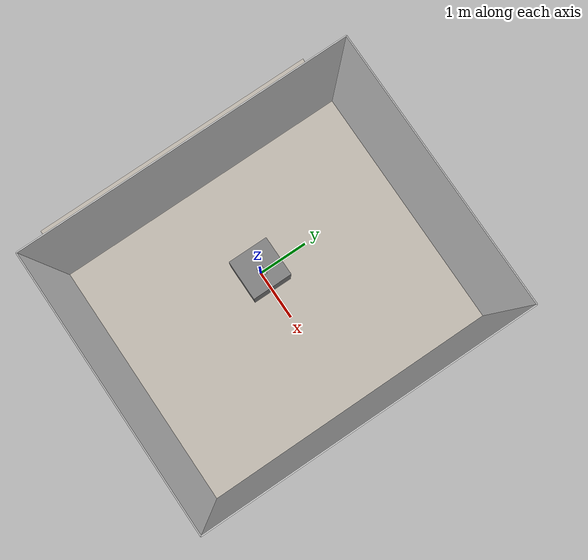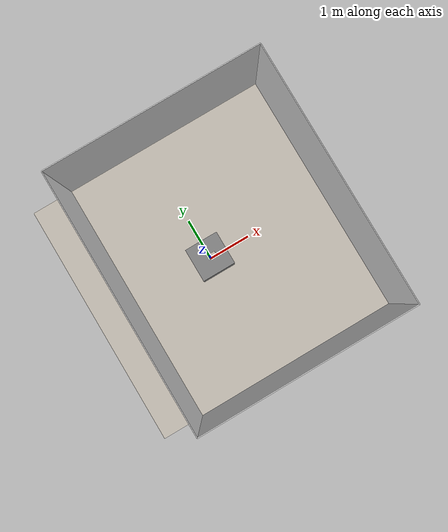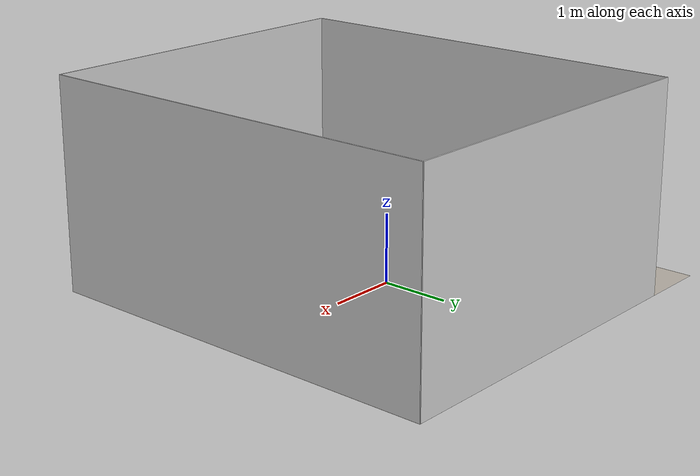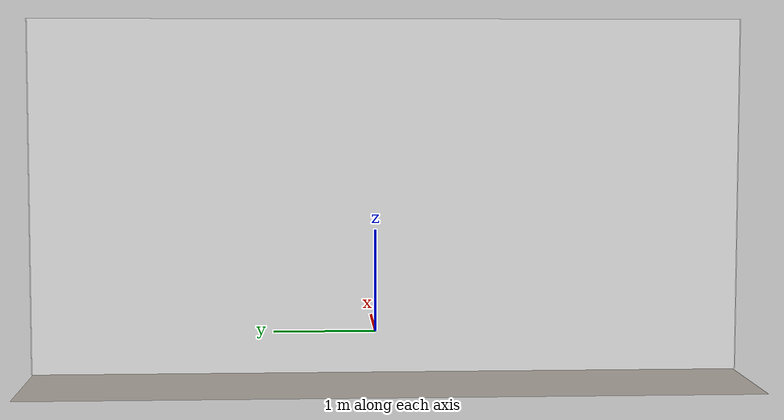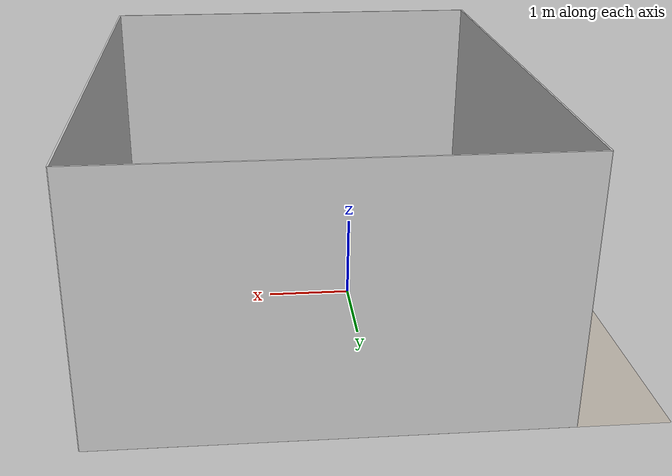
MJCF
<mujoco model="vpa_tabletop_note_scene">
  <asset>
    <texture builtin="gradient" height="256" rgb1=".9 .9 1." rgb2=".2 .3 .4" type="skybox" width="256"/>

    <texture file="../../textures/tile_grigia_caldera_porcelain_floor.png" type="2d" name="texplane"/>
    <material name="floorplane" reflectance="0.0" shininess="0.0" specular="0.0" texrepeat="3 3" texture="texplane" texuniform="true"/>

    <texture file="../../textures/martin_novak_wood_table.png" type="cube" name="tex-table"/>
    <material name="table_texture" reflectance="0.0" shininess="0.0" specular="0.2" texrepeat="1 1" texture="tex-table"/>

    <texture file="../../textures/martin_novak_wood_table.png" type="cube" name="tex-table-legs"/>
    <material name="table_legs" reflectance="0.8" shininess="0.8" texrepeat="1 1" texture="tex-table-legs"/>

    <texture file="../../textures/smooth_light_gray_plaster.png" type="2d" name="tex-wall"/>
    <material name="walls_mat" reflectance="0.0" shininess="0.3" specular="0.8" texrepeat="3 3" texture="tex-wall" texuniform="true"/>

    <!-- VPA note carrier texture -->
    <texture file="../textures/note_drop.png" type="2d" name="tex-vpa-note"/>
    <material name="mat-vpa-note" reflectance="0.0" shininess="0.0" specular="0.0" texture="tex-vpa-note" texuniform="true"/>
  </asset>

  <worldbody>
    <geom condim="3" group="1" material="floorplane" name="floor" pos="0 0 0" size="3 3 .125" type="plane"/>

    <geom pos="0.5 3 1.5" quat="0.7071 0.7071 0 0" size="2.5 1.5 0.01" type="box" conaffinity="0" contype="0" group="1" name="wall_left_visual" material="walls_mat"/>
    <geom pos="0.5 -3 1.5" quat="0.7071 -0.7071 0 0" size="2.5 1.5 0.01" type="box" conaffinity="0" contype="0" group="1" name="wall_right_visual" material="walls_mat"/>
    <geom pos="-2 0 1.5" quat="0.5 0.5 0.5 0.5" size="3 1.5 0.01" type="box" conaffinity="0" contype="0" group="1" name="wall_rear_visual" material="walls_mat"/>
    <geom pos="3 0 1.5" quat="0.5 0.5 -0.5 -0.5" size="3 1.5 0.01" type="box" conaffinity="0" contype="0" group="1" name="wall_front_visual" material="walls_mat"/>

    <body name="table" pos="0 0 0.4">
      <geom pos="0 0 0" size="0.4 0.4 0.4" type="box" group="0" name="table_collision" friction="1 0.005 0.0001"/>
      <geom pos="0 0 0" size="0.4 0.4 0.4" type="box" conaffinity="0" contype="0" group="1" name="table_visual" material="table_texture"/>
      <site pos="0 0 0.4" name="table_top" size="0.001 0.001 0.001" rgba="0 0 0 0"/>

      <geom pos="0 0 0" size="0.05 0.1" type="cylinder" conaffinity="0" contype="0" group="1" name="table_leg1_visual" material="table_legs"/>
      <geom pos="0 0 0" size="0.05 0.1" type="cylinder" conaffinity="0" contype="0" group="1" name="table_leg2_visual" material="table_legs"/>
      <geom pos="0 0 0" size="0.05 0.1" type="cylinder" conaffinity="0" contype="0" group="1" name="table_leg3_visual" material="table_legs"/>
      <geom pos="0 0 0" size="0.05 0.1" type="cylinder" conaffinity="0" contype="0" group="1" name="table_leg4_visual" material="table_legs"/>

      <!-- VPA note: centered but slightly toward robot view, thin plate on table top -->
      <geom
        name="vpa_note_drop"
        type="box"
        pos="0.06 0.0 0.401"
        size="0.085 0.055 0.0008"
        quat="1 0 0 0"
        material="mat-vpa-note"
        conaffinity="0"
        contype="0"
        group="1"
      />
    </body>

    <light name="light1" diffuse=".8 .8 .8" dir="0 -.15 -1" directional="false" pos="1 1 4.0" specular="0.3 0.3 0.3" castshadow="false"/>
    <light name="light2" diffuse=".8 .8 .8" dir="0 -.15 -1" directional="false" pos="-3. -3. 4.0" specular="0.3 0.3 0.3" castshadow="false"/>

    <camera mode="fixed" name="frontview" pos="1.0 0 1.45" quat="0.56 0.43 0.43 0.56"/>
    <camera mode="fixed" name="birdview" pos="-0.2 0 3.0" quat="0.7071 0 0 0.7071"/>
    <camera mode="fixed" name="agentview" pos="0.5 0 1.35" quat="0.653 0.271 0.271 0.653"/>
    <camera mode="fixed" name="sideview" pos="-0.05651774593317116 1.2761224129427358 1.4879572214102434" quat="0.009905065491771751 0.006877963156909582 0.5912228352893879 0.806418094001364"/>
  </worldbody>
</mujoco>
